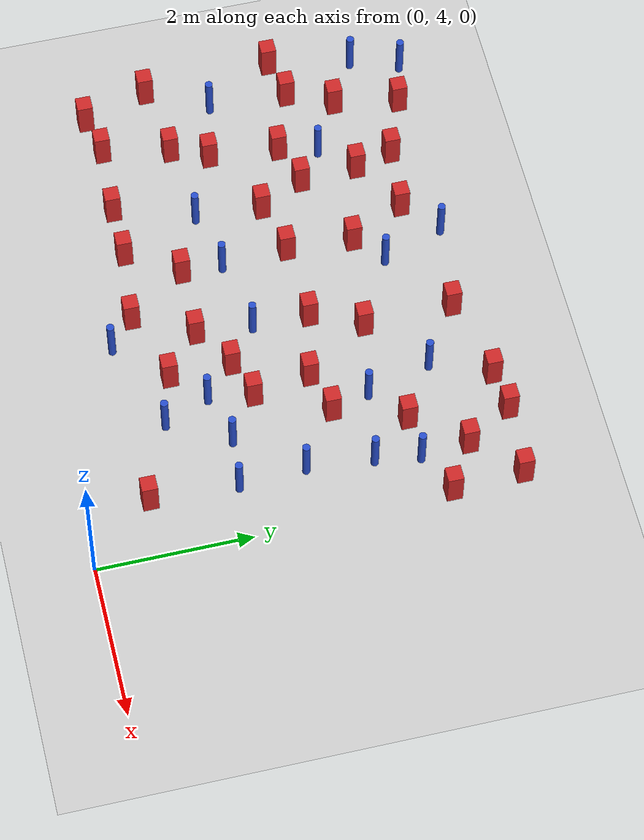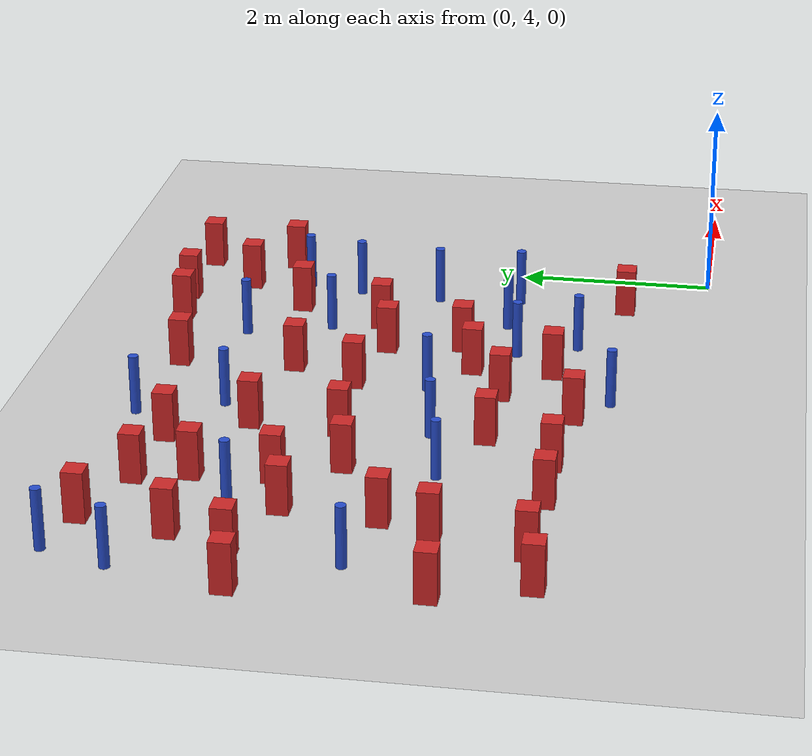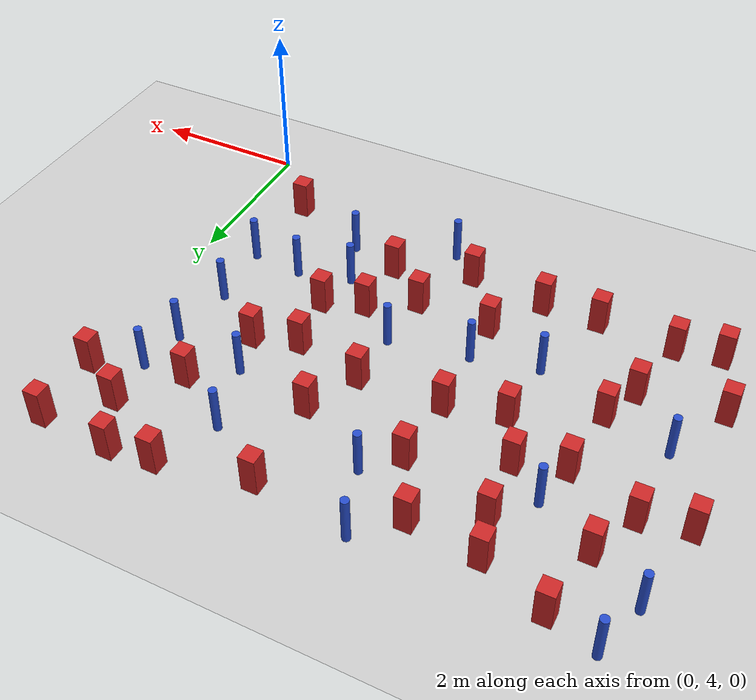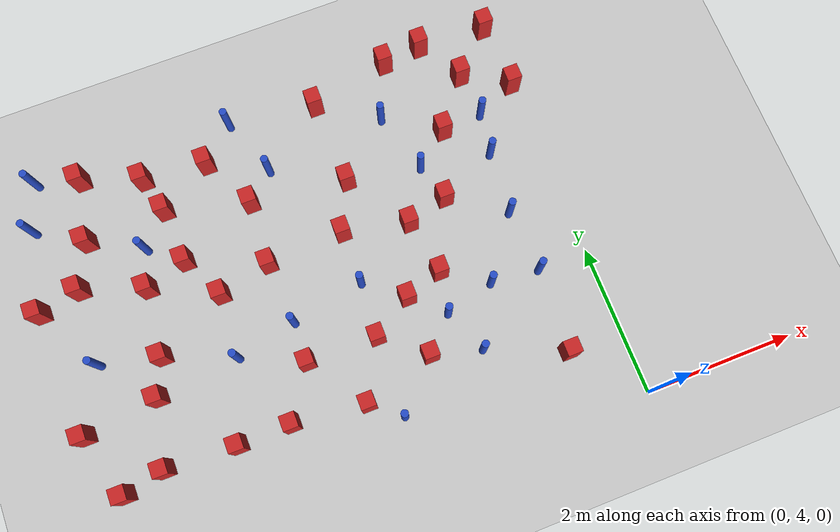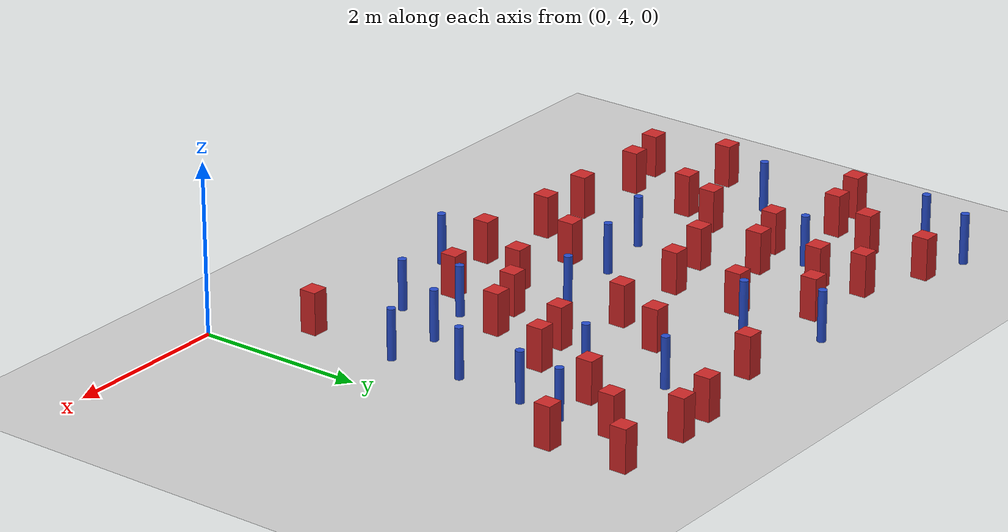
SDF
<sdf version="1.6">
 <world name="default">
  <model name="ground_plane">
   <static>1</static>
   <link name="link">
    <collision name="collision">
     <geometry><plane><normal>0 0 1</normal><size>100 100</size></plane></geometry>
     <surface><friction><ode><mu>100</mu><mu2>50</mu2></ode></friction></surface>
    </collision>
    <visual name="visual">
     <cast_shadows>0</cast_shadows>
     <geometry><plane><normal>0 0 1</normal><size>100 100</size></plane></geometry>
     <material>
      <ambient>1.0 1.0 1.0 1.0</ambient>
      <diffuse>0.8 0.8 0.8 1.0</diffuse>
      <specular>0.01 0.01 0.01 1.000000</specular>
     </material>
    </visual>
   </link>
  </model>
  <model name="square_post_obstacle3">
   <static>true</static>
   <pose>-2.6174061966 8.0196257443 8.22691968438e-08 7.22125133819e-06 -7.54495500217e-07 2.29674213826e-05</pose>
   <link name="link">
    <pose>0 0 0.25 0 -0 0</pose>
    <inertial>
     <mass>100</mass>
     <inertia>
      <ixx>0.166667</ixx>
      <ixy>0</ixy>
      <ixz>0</ixz>
      <iyy>0.166667</iyy>
      <iyz>0</iyz>
      <izz>0.166667</izz>
     </inertia>
    </inertial>
    <collision name="collision"><geometry><box><size>.2 .2 .5</size></box></geometry></collision>
    <visual name="visual">
     <geometry><box><size>.2 .2 .5</size></box></geometry>
     <material>
      <script><name>Gazebo/Red</name><uri>file://media/materials/scripts/gazebo.material</uri></script>
     </material>
    </visual>
   </link>
  </model>
  <model name="square_post_obstacle5">
   <static>true</static>
   <pose>-0.645134835433 8.885105888 8.22691968438e-08 7.22125133819e-06 -7.54495500217e-07 2.29674213826e-05</pose>
   <link name="link">
    <pose>0 0 0.25 0 -0 0</pose>
    <inertial>
     <mass>100</mass>
     <inertia>
      <ixx>0.166667</ixx>
      <ixy>0</ixy>
      <ixz>0</ixz>
      <iyy>0.166667</iyy>
      <iyz>0</iyz>
      <izz>0.166667</izz>
     </inertia>
    </inertial>
    <collision name="collision"><geometry><box><size>.2 .2 .5</size></box></geometry></collision>
    <visual name="visual">
     <geometry><box><size>.2 .2 .5</size></box></geometry>
     <material>
      <script><name>Gazebo/Red</name><uri>file://media/materials/scripts/gazebo.material</uri></script>
     </material>
    </visual>
   </link>
  </model>
  <model name="square_post_obstacle7">
   <static>true</static>
   <pose>-2.04888916923 7.17420283449 8.22691968438e-08 7.22125133819e-06 -7.54495500217e-07 2.29674213826e-05</pose>
   <link name="link">
    <pose>0 0 0.25 0 -0 0</pose>
    <inertial>
     <mass>100</mass>
     <inertia>
      <ixx>0.166667</ixx>
      <ixy>0</ixy>
      <ixz>0</ixz>
      <iyy>0.166667</iyy>
      <iyz>0</iyz>
      <izz>0.166667</izz>
     </inertia>
    </inertial>
    <collision name="collision"><geometry><box><size>.2 .2 .5</size></box></geometry></collision>
    <visual name="visual">
     <geometry><box><size>.2 .2 .5</size></box></geometry>
     <material>
      <script><name>Gazebo/Red</name><uri>file://media/materials/scripts/gazebo.material</uri></script>
     </material>
    </visual>
   </link>
  </model>
  <model name="pole_obstacle11">
   <static>true</static>
   <pose>-3.9105672306 6.45645708071 2.88873142074e-08 -9.90536692062e-09 4.60219948937e-07 -1.20965994985e-07</pose>
   <link name="link">
    <pose>0 0 0.3 0 -0 0</pose>
    <inertial>
     <mass>1</mass>
     <inertia><ixx>0.145833</ixx><ixy>0</ixy><ixz>0</ixz><iyy>0.145833</iyy><iyz>0</iyz><izz>0.125</izz></inertia>
    </inertial>
    <collision name="collision">
     <geometry><cylinder><radius>0.05</radius><length>.6</length></cylinder></geometry>
    </collision>
    <visual name="visual">
     <geometry><cylinder><radius>0.05</radius><length>.6</length></cylinder></geometry>
     <material>
      <script><name>Gazebo/Blue</name><uri>file://media/materials/scripts/gazebo.material</uri></script>
     </material>
    </visual>
   </link>
  </model>
  <model name="square_post_obstacle8">
   <static>true</static>
   <pose>-6.82306011882 6.04115686973 8.22691968438e-08 7.2212513382e-06 -7.54495500217e-07 2.29674213826e-05</pose>
   <link name="link">
    <pose>0 0 0.25 0 -0 0</pose>
    <inertial>
     <mass>100</mass>
     <inertia>
      <ixx>0.166667</ixx>
      <ixy>0</ixy>
      <ixz>0</ixz>
      <iyy>0.166667</iyy>
      <iyz>0</iyz>
      <izz>0.166667</izz>
     </inertia>
    </inertial>
    <collision name="collision"><geometry><box><size>.2 .2 .5</size></box></geometry></collision>
    <visual name="visual">
     <geometry><box><size>.2 .2 .5</size></box></geometry>
     <material>
      <script><name>Gazebo/Red</name><uri>file://media/materials/scripts/gazebo.material</uri></script>
     </material>
    </visual>
   </link>
  </model>
  <model name="square_post_obstacle9">
   <static>true</static>
   <pose>-3.92443147104 5.92480272412 8.22691968438e-08 7.22125133819e-06 -7.54495500217e-07 2.29674213826e-05</pose>
   <link name="link">
    <pose>0 0 0.25 0 -0 0</pose>
    <inertial>
     <mass>100</mass>
     <inertia>
      <ixx>0.166667</ixx>
      <ixy>0</ixy>
      <ixz>0</ixz>
      <iyy>0.166667</iyy>
      <iyz>0</iyz>
      <izz>0.166667</izz>
     </inertia>
    </inertial>
    <collision name="collision"><geometry><box><size>.2 .2 .5</size></box></geometry></collision>
    <visual name="visual">
     <geometry><box><size>.2 .2 .5</size></box></geometry>
     <material>
      <script><name>Gazebo/Red</name><uri>file://media/materials/scripts/gazebo.material</uri></script>
     </material>
    </visual>
   </link>
  </model>
  <model name="square_post_obstacle18">
   <static>true</static>
   <pose>-2.43390667206 6.24936321946 8.22691968438e-08 7.2212513382e-06 -7.54495500217e-07 2.29674213826e-05</pose>
   <link name="link">
    <pose>0 0 0.25 0 -0 0</pose>
    <inertial>
     <mass>100</mass>
     <inertia>
      <ixx>0.166667</ixx>
      <ixy>0</ixy>
      <ixz>0</ixz>
      <iyy>0.166667</iyy>
      <iyz>0</iyz>
      <izz>0.166667</izz>
     </inertia>
    </inertial>
    <collision name="collision"><geometry><box><size>.2 .2 .5</size></box></geometry></collision>
    <visual name="visual">
     <geometry><box><size>.2 .2 .5</size></box></geometry>
     <material>
      <script><name>Gazebo/Red</name><uri>file://media/materials/scripts/gazebo.material</uri></script>
     </material>
    </visual>
   </link>
  </model>
  <model name="square_post_obstacle25">
   <static>true</static>
   <pose>-3.96421467149 7.31643335258 8.22691968438e-08 7.22125133819e-06 -7.54495500217e-07 2.29674213826e-05</pose>
   <link name="link">
    <pose>0 0 0.25 0 -0 0</pose>
    <inertial>
     <mass>100</mass>
     <inertia>
      <ixx>0.166667</ixx>
      <ixy>0</ixy>
      <ixz>0</ixz>
      <iyy>0.166667</iyy>
      <iyz>0</iyz>
      <izz>0.166667</izz>
     </inertia>
    </inertial>
    <collision name="collision"><geometry><box><size>.2 .2 .5</size></box></geometry></collision>
    <visual name="visual">
     <geometry><box><size>.2 .2 .5</size></box></geometry>
     <material>
      <script><name>Gazebo/Red</name><uri>file://media/materials/scripts/gazebo.material</uri></script>
     </material>
    </visual>
   </link>
  </model>
  <model name="square_post_obstacle28">
   <static>true</static>
   <pose>-0.0864518264217 9.4384577424 8.22691968438e-08 7.22125133819e-06 -7.54495500217e-07 2.29674213826e-05</pose>
   <link name="link">
    <pose>0 0 0.25 0 -0 0</pose>
    <inertial>
     <mass>100</mass>
     <inertia>
      <ixx>0.166667</ixx>
      <ixy>0</ixy>
      <ixz>0</ixz>
      <iyy>0.166667</iyy>
      <iyz>0</iyz>
      <izz>0.166667</izz>
     </inertia>
    </inertial>
    <collision name="collision"><geometry><box><size>.2 .2 .5</size></box></geometry></collision>
    <visual name="visual">
     <geometry><box><size>.2 .2 .5</size></box></geometry>
     <material>
      <script><name>Gazebo/Red</name><uri>file://media/materials/scripts/gazebo.material</uri></script>
     </material>
    </visual>
   </link>
  </model>
  <model name="square_post_obstacle30">
   <static>true</static>
   <pose>-6.36442578415 7.86415820606 8.22691968438e-08 7.22125133819e-06 -7.54495500217e-07 2.29674213826e-05</pose>
   <link name="link">
    <pose>0 0 0.25 0 -0 0</pose>
    <inertial>
     <mass>100</mass>
     <inertia>
      <ixx>0.166667</ixx>
      <ixy>0</ixy>
      <ixz>0</ixz>
      <iyy>0.166667</iyy>
      <iyz>0</iyz>
      <izz>0.166667</izz>
     </inertia>
    </inertial>
    <collision name="collision"><geometry><box><size>.2 .2 .5</size></box></geometry></collision>
    <visual name="visual">
     <geometry><box><size>.2 .2 .5</size></box></geometry>
     <material>
      <script><name>Gazebo/Red</name><uri>file://media/materials/scripts/gazebo.material</uri></script>
     </material>
    </visual>
   </link>
  </model>
  <model name="square_post_obstacle31">
   <static>true</static>
   <pose>-4.2974575285 8.919167651 8.22691968438e-08 7.22125133819e-06 -7.54495500217e-07 2.29674213826e-05</pose>
   <link name="link">
    <pose>0 0 0.25 0 -0 0</pose>
    <inertial>
     <mass>100</mass>
     <inertia>
      <ixx>0.166667</ixx>
      <ixy>0</ixy>
      <ixz>0</ixz>
      <iyy>0.166667</iyy>
      <iyz>0</iyz>
      <izz>0.166667</izz>
     </inertia>
    </inertial>
    <collision name="collision"><geometry><box><size>.2 .2 .5</size></box></geometry></collision>
    <visual name="visual">
     <geometry><box><size>.2 .2 .5</size></box></geometry>
     <material>
      <script><name>Gazebo/Red</name><uri>file://media/materials/scripts/gazebo.material</uri></script>
     </material>
    </visual>
   </link>
  </model>
  <model name="square_post_obstacle32">
   <static>true</static>
   <pose>-2.98409769363 5.90545911593 8.22691968438e-08 7.2212513382e-06 -7.54495500217e-07 2.29674213826e-05</pose>
   <link name="link">
    <pose>0 0 0.25 0 -0 0</pose>
    <inertial>
     <mass>100</mass>
     <inertia>
      <ixx>0.166667</ixx>
      <ixy>0</ixy>
      <ixz>0</ixz>
      <iyy>0.166667</iyy>
      <iyz>0</iyz>
      <izz>0.166667</izz>
     </inertia>
    </inertial>
    <collision name="collision"><geometry><box><size>.2 .2 .5</size></box></geometry></collision>
    <visual name="visual">
     <geometry><box><size>.2 .2 .5</size></box></geometry>
     <material>
      <script><name>Gazebo/Red</name><uri>file://media/materials/scripts/gazebo.material</uri></script>
     </material>
    </visual>
   </link>
  </model>
  <model name="pole_obstacle47">
   <static>true</static>
   <pose>-4.72618957109 6.2810639374 2.88873142074e-08 -9.90536690842e-09 4.60219948965e-07 -1.20965994976e-07</pose>
   <link name="link">
    <pose>0 0 0.3 0 -0 0</pose>
    <inertial>
     <mass>1</mass>
     <inertia><ixx>0.145833</ixx><ixy>0</ixy><ixz>0</ixz><iyy>0.145833</iyy><iyz>0</iyz><izz>0.125</izz></inertia>
    </inertial>
    <collision name="collision">
     <geometry><cylinder><radius>0.05</radius><length>.6</length></cylinder></geometry>
    </collision>
    <visual name="visual">
     <geometry><cylinder><radius>0.05</radius><length>.6</length></cylinder></geometry>
     <material>
      <script><name>Gazebo/Blue</name><uri>file://media/materials/scripts/gazebo.material</uri></script>
     </material>
    </visual>
   </link>
  </model>
  <model name="pole_obstacle48">
   <static>true</static>
   <pose>-2.01597798541 5.85317914082 2.88873142074e-08 -9.90536689575e-09 4.60219948995e-07 -1.20965994956e-07</pose>
   <link name="link">
    <pose>0 0 0.3 0 -0 0</pose>
    <inertial>
     <mass>1</mass>
     <inertia><ixx>0.145833</ixx><ixy>0</ixy><ixz>0</ixz><iyy>0.145833</iyy><iyz>0</iyz><izz>0.125</izz></inertia>
    </inertial>
    <collision name="collision">
     <geometry><cylinder><radius>0.05</radius><length>.6</length></cylinder></geometry>
    </collision>
    <visual name="visual">
     <geometry><cylinder><radius>0.05</radius><length>.6</length></cylinder></geometry>
     <material>
      <script><name>Gazebo/Blue</name><uri>file://media/materials/scripts/gazebo.material</uri></script>
     </material>
    </visual>
   </link>
  </model>
  <model name="square_post_obstacle38">
   <static>true</static>
   <pose>-5.53027642553 7.56623998618 8.22691968438e-08 7.22125133819e-06 -7.54495500217e-07 2.29674213826e-05</pose>
   <link name="link">
    <pose>0 0 0.25 0 -0 0</pose>
    <inertial>
     <mass>100</mass>
     <inertia>
      <ixx>0.166667</ixx>
      <ixy>0</ixy>
      <ixz>0</ixz>
      <iyy>0.166667</iyy>
      <iyz>0</iyz>
      <izz>0.166667</izz>
     </inertia>
    </inertial>
    <collision name="collision"><geometry><box><size>.2 .2 .5</size></box></geometry></collision>
    <visual name="visual">
     <geometry><box><size>.2 .2 .5</size></box></geometry>
     <material>
      <script><name>Gazebo/Red</name><uri>file://media/materials/scripts/gazebo.material</uri></script>
     </material>
    </visual>
   </link>
  </model>
  <model name="pole_obstacle56">
   <static>true</static>
   <pose>-0.696608456123 5.96498830313 2.88873142074e-08 -9.90536689661e-09 4.60219948993e-07 -1.20965994957e-07</pose>
   <link name="link">
    <pose>0 0 0.3 0 -0 0</pose>
    <inertial>
     <mass>1</mass>
     <inertia><ixx>0.145833</ixx><ixy>0</ixy><ixz>0</ixz><iyy>0.145833</iyy><iyz>0</iyz><izz>0.125</izz></inertia>
    </inertial>
    <collision name="collision">
     <geometry><cylinder><radius>0.05</radius><length>.6</length></cylinder></geometry>
    </collision>
    <visual name="visual">
     <geometry><cylinder><radius>0.05</radius><length>.6</length></cylinder></geometry>
     <material>
      <script><name>Gazebo/Blue</name><uri>file://media/materials/scripts/gazebo.material</uri></script>
     </material>
    </visual>
   </link>
  </model>
  <model name="pole_obstacle62">
   <static>true</static>
   <pose>-6.71667173271 8.83061359466 2.88873142074e-08 -9.9053668967e-09 4.60219948993e-07 -1.20965994957e-07</pose>
   <link name="link">
    <pose>0 0 0.3 0 -0 0</pose>
    <inertial>
     <mass>1</mass>
     <inertia><ixx>0.145833</ixx><ixy>0</ixy><ixz>0</ixz><iyy>0.145833</iyy><iyz>0</iyz><izz>0.125</izz></inertia>
    </inertial>
    <collision name="collision">
     <geometry><cylinder><radius>0.05</radius><length>.6</length></cylinder></geometry>
    </collision>
    <visual name="visual">
     <geometry><cylinder><radius>0.05</radius><length>.6</length></cylinder></geometry>
     <material>
      <script><name>Gazebo/Blue</name><uri>file://media/materials/scripts/gazebo.material</uri></script>
     </material>
    </visual>
   </link>
  </model>
  <model name="square_post_obstacle60">
   <static>true</static>
   <pose>-5.621400066 6.65565342604 8.22691968438e-08 7.2212513382e-06 -7.54495500217e-07 2.29674213826e-05</pose>
   <link name="link">
    <pose>0 0 0.25 0 -0 0</pose>
    <inertial>
     <mass>100</mass>
     <inertia>
      <ixx>0.166667</ixx>
      <ixy>0</ixy>
      <ixz>0</ixz>
      <iyy>0.166667</iyy>
      <iyz>0</iyz>
      <izz>0.166667</izz>
     </inertia>
    </inertial>
    <collision name="collision"><geometry><box><size>.2 .2 .5</size></box></geometry></collision>
    <visual name="visual">
     <geometry><box><size>.2 .2 .5</size></box></geometry>
     <material>
      <script><name>Gazebo/Red</name><uri>file://media/materials/scripts/gazebo.material</uri></script>
     </material>
    </visual>
   </link>
  </model>
  <model name="square_post_obstacle64">
   <static>true</static>
   <pose>-5.15093123879 9.00493640276 8.22691968438e-08 7.22125133819e-06 -7.54495500217e-07 2.29674213826e-05</pose>
   <link name="link">
    <pose>0 0 0.25 0 -0 0</pose>
    <inertial>
     <mass>100</mass>
     <inertia>
      <ixx>0.166667</ixx>
      <ixy>0</ixy>
      <ixz>0</ixz>
      <iyy>0.166667</iyy>
      <iyz>0</iyz>
      <izz>0.166667</izz>
     </inertia>
    </inertial>
    <collision name="collision"><geometry><box><size>.2 .2 .5</size></box></geometry></collision>
    <visual name="visual">
     <geometry><box><size>.2 .2 .5</size></box></geometry>
     <material>
      <script><name>Gazebo/Red</name><uri>file://media/materials/scripts/gazebo.material</uri></script>
     </material>
    </visual>
   </link>
  </model>
  <model name="pole_obstacle75">
   <static>true</static>
   <pose>-3.00789084993 4.82495907167 2.88873142074e-08 -9.90536692062e-09 4.60219948937e-07 -1.20965994985e-07</pose>
   <link name="link">
    <pose>0 0 0.3 0 -0 0</pose>
    <inertial>
     <mass>1</mass>
     <inertia><ixx>0.145833</ixx><ixy>0</ixy><ixz>0</ixz><iyy>0.145833</iyy><iyz>0</iyz><izz>0.125</izz></inertia>
    </inertial>
    <collision name="collision">
     <geometry><cylinder><radius>0.05</radius><length>.6</length></cylinder></geometry>
    </collision>
    <visual name="visual">
     <geometry><cylinder><radius>0.05</radius><length>.6</length></cylinder></geometry>
     <material>
      <script><name>Gazebo/Blue</name><uri>file://media/materials/scripts/gazebo.material</uri></script>
     </material>
    </visual>
   </link>
  </model>
  <model name="pole_obstacle82">
   <static>true</static>
   <pose>-1.77037196241 5.25587868518 2.88873142074e-08 -9.90536689852e-09 4.60219948989e-07 -1.2096599496e-07</pose>
   <link name="link">
    <pose>0 0 0.3 0 -0 0</pose>
    <inertial>
     <mass>1</mass>
     <inertia><ixx>0.145833</ixx><ixy>0</ixy><ixz>0</ixz><iyy>0.145833</iyy><iyz>0</iyz><izz>0.125</izz></inertia>
    </inertial>
    <collision name="collision">
     <geometry><cylinder><radius>0.05</radius><length>.6</length></cylinder></geometry>
    </collision>
    <visual name="visual">
     <geometry><cylinder><radius>0.05</radius><length>.6</length></cylinder></geometry>
     <material>
      <script><name>Gazebo/Blue</name><uri>file://media/materials/scripts/gazebo.material</uri></script>
     </material>
    </visual>
   </link>
  </model>
  <model name="pole_obstacle83">
   <static>true</static>
   <pose>-5.40125924761 8.07742929753 2.88873142074e-08 -9.9053668967e-09 4.60219948993e-07 -1.20965994957e-07</pose>
   <link name="link">
    <pose>0 0 0.3 0 -0 0</pose>
    <inertial>
     <mass>1</mass>
     <inertia><ixx>0.145833</ixx><ixy>0</ixy><ixz>0</ixz><iyy>0.145833</iyy><iyz>0</iyz><izz>0.125</izz></inertia>
    </inertial>
    <collision name="collision">
     <geometry><cylinder><radius>0.05</radius><length>.6</length></cylinder></geometry>
    </collision>
    <visual name="visual">
     <geometry><cylinder><radius>0.05</radius><length>.6</length></cylinder></geometry>
     <material>
      <script><name>Gazebo/Blue</name><uri>file://media/materials/scripts/gazebo.material</uri></script>
     </material>
    </visual>
   </link>
  </model>
  <model name="square_post_obstacle76">
   <static>true</static>
   <pose>-5.01425617465 8.50079144619 8.22691968438e-08 7.22125133819e-06 -7.54495500217e-07 2.29674213826e-05</pose>
   <link name="link">
    <pose>0 0 0.25 0 -0 0</pose>
    <inertial>
     <mass>100</mass>
     <inertia>
      <ixx>0.166667</ixx>
      <ixy>0</ixy>
      <ixz>0</ixz>
      <iyy>0.166667</iyy>
      <iyz>0</iyz>
      <izz>0.166667</izz>
     </inertia>
    </inertial>
    <collision name="collision"><geometry><box><size>.2 .2 .5</size></box></geometry></collision>
    <visual name="visual">
     <geometry><box><size>.2 .2 .5</size></box></geometry>
     <material>
      <script><name>Gazebo/Red</name><uri>file://media/materials/scripts/gazebo.material</uri></script>
     </material>
    </visual>
   </link>
  </model>
  <model name="pole_obstacle89">
   <static>true</static>
   <pose>-0.68033946062 7.68483507442 2.88873142074e-08 -9.90536689661e-09 4.60219948993e-07 -1.20965994957e-07</pose>
   <link name="link">
    <pose>0 0 0.3 0 -0 0</pose>
    <inertial>
     <mass>1</mass>
     <inertia><ixx>0.145833</ixx><ixy>0</ixy><ixz>0</ixz><iyy>0.145833</iyy><iyz>0</iyz><izz>0.125</izz></inertia>
    </inertial>
    <collision name="collision">
     <geometry><cylinder><radius>0.05</radius><length>.6</length></cylinder></geometry>
    </collision>
    <visual name="visual">
     <geometry><cylinder><radius>0.05</radius><length>.6</length></cylinder></geometry>
     <material>
      <script><name>Gazebo/Blue</name><uri>file://media/materials/scripts/gazebo.material</uri></script>
     </material>
    </visual>
   </link>
  </model>
  <model name="square_post_obstacle82">
   <static>true</static>
   <pose>-4.36212795225 5.25739036829 8.22691968438e-08 7.2212513382e-06 -7.54495500217e-07 2.29674213826e-05</pose>
   <link name="link">
    <pose>0 0 0.25 0 -0 0</pose>
    <inertial>
     <mass>100</mass>
     <inertia>
      <ixx>0.166667</ixx>
      <ixy>0</ixy>
      <ixz>0</ixz>
      <iyy>0.166667</iyy>
      <iyz>0</iyz>
      <izz>0.166667</izz>
     </inertia>
    </inertial>
    <collision name="collision"><geometry><box><size>.2 .2 .5</size></box></geometry></collision>
    <visual name="visual">
     <geometry><box><size>.2 .2 .5</size></box></geometry>
     <material>
      <script><name>Gazebo/Red</name><uri>file://media/materials/scripts/gazebo.material</uri></script>
     </material>
    </visual>
   </link>
  </model>
  <model name="pole_obstacle98">
   <static>true</static>
   <pose>-3.53865539487 8.52902612128 2.88873142074e-08 -9.9053668994e-09 4.60219948987e-07 -1.20965994963e-07</pose>
   <link name="link">
    <pose>0 0 0.3 0 -0 0</pose>
    <inertial>
     <mass>1</mass>
     <inertia><ixx>0.145833</ixx><ixy>0</ixy><ixz>0</ixz><iyy>0.145833</iyy><iyz>0</iyz><izz>0.125</izz></inertia>
    </inertial>
    <collision name="collision">
     <geometry><cylinder><radius>0.05</radius><length>.6</length></cylinder></geometry>
    </collision>
    <visual name="visual">
     <geometry><cylinder><radius>0.05</radius><length>.6</length></cylinder></geometry>
     <material>
      <script><name>Gazebo/Blue</name><uri>file://media/materials/scripts/gazebo.material</uri></script>
     </material>
    </visual>
   </link>
  </model>
  <model name="pole_obstacle108">
   <static>true</static>
   <pose>-2.92514979462 6.63573691955 2.88873142074e-08 -9.90536689859e-09 4.60219948989e-07 -1.20965994961e-07</pose>
   <link name="link">
    <pose>0 0 0.3 0 -0 0</pose>
    <inertial>
     <mass>1</mass>
     <inertia><ixx>0.145833</ixx><ixy>0</ixy><ixz>0</ixz><iyy>0.145833</iyy><iyz>0</iyz><izz>0.125</izz></inertia>
    </inertial>
    <collision name="collision">
     <geometry><cylinder><radius>0.05</radius><length>.6</length></cylinder></geometry>
    </collision>
    <visual name="visual">
     <geometry><cylinder><radius>0.05</radius><length>.6</length></cylinder></geometry>
     <material>
      <script><name>Gazebo/Blue</name><uri>file://media/materials/scripts/gazebo.material</uri></script>
     </material>
    </visual>
   </link>
  </model>
  <model name="pole_obstacle110">
   <static>true</static>
   <pose>-1.62707193069 7.83590830338 2.88873142074e-08 -9.90536689852e-09 4.60219948989e-07 -1.2096599496e-07</pose>
   <link name="link">
    <pose>0 0 0.3 0 -0 0</pose>
    <inertial>
     <mass>1</mass>
     <inertia><ixx>0.145833</ixx><ixy>0</ixy><ixz>0</ixz><iyy>0.145833</iyy><iyz>0</iyz><izz>0.125</izz></inertia>
    </inertial>
    <collision name="collision">
     <geometry><cylinder><radius>0.05</radius><length>.6</length></cylinder></geometry>
    </collision>
    <visual name="visual">
     <geometry><cylinder><radius>0.05</radius><length>.6</length></cylinder></geometry>
     <material>
      <script><name>Gazebo/Blue</name><uri>file://media/materials/scripts/gazebo.material</uri></script>
     </material>
    </visual>
   </link>
  </model>
  <model name="square_post_obstacle121">
   <static>true</static>
   <pose>-5.8254573433 6.17375206314 8.22691968438e-08 7.2212513382e-06 -7.54495500217e-07 2.29674213826e-05</pose>
   <link name="link">
    <pose>0 0 0.25 0 -0 0</pose>
    <inertial>
     <mass>100</mass>
     <inertia>
      <ixx>0.166667</ixx>
      <ixy>0</ixy>
      <ixz>0</ixz>
      <iyy>0.166667</iyy>
      <iyz>0</iyz>
      <izz>0.166667</izz>
     </inertia>
    </inertial>
    <collision name="collision"><geometry><box><size>.2 .2 .5</size></box></geometry></collision>
    <visual name="visual">
     <geometry><box><size>.2 .2 .5</size></box></geometry>
     <material>
      <script><name>Gazebo/Red</name><uri>file://media/materials/scripts/gazebo.material</uri></script>
     </material>
    </visual>
   </link>
  </model>
  <model name="pole_obstacle127">
   <static>true</static>
   <pose>-1.34891424311 6.02551207283 2.88873142074e-08 -9.90536689852e-09 4.60219948989e-07 -1.2096599496e-07</pose>
   <link name="link">
    <pose>0 0 0.3 0 -0 0</pose>
    <inertial>
     <mass>1</mass>
     <inertia><ixx>0.145833</ixx><ixy>0</ixy><ixz>0</ixz><iyy>0.145833</iyy><iyz>0</iyz><izz>0.125</izz></inertia>
    </inertial>
    <collision name="collision">
     <geometry><cylinder><radius>0.05</radius><length>.6</length></cylinder></geometry>
    </collision>
    <visual name="visual">
     <geometry><cylinder><radius>0.05</radius><length>.6</length></cylinder></geometry>
     <material>
      <script><name>Gazebo/Blue</name><uri>file://media/materials/scripts/gazebo.material</uri></script>
     </material>
    </visual>
   </link>
  </model>
  <model name="square_post_obstacle123">
   <static>true</static>
   <pose>-3.91560765916 8.18813620422 8.22691968438e-08 7.22125133819e-06 -7.54495500217e-07 2.29674213826e-05</pose>
   <link name="link">
    <pose>0 0 0.25 0 -0 0</pose>
    <inertial>
     <mass>100</mass>
     <inertia>
      <ixx>0.166667</ixx>
      <ixy>0</ixy>
      <ixz>0</ixz>
      <iyy>0.166667</iyy>
      <iyz>0</iyz>
      <izz>0.166667</izz>
     </inertia>
    </inertial>
    <collision name="collision"><geometry><box><size>.2 .2 .5</size></box></geometry></collision>
    <visual name="visual">
     <geometry><box><size>.2 .2 .5</size></box></geometry>
     <material>
      <script><name>Gazebo/Red</name><uri>file://media/materials/scripts/gazebo.material</uri></script>
     </material>
    </visual>
   </link>
  </model>
  <model name="pole_obstacle133">
   <static>true</static>
   <pose>-1.87424847545 8.68319025933 2.88873142074e-08 -9.90536690474e-09 4.60219948974e-07 -1.2096599497e-07</pose>
   <link name="link">
    <pose>0 0 0.3 0 -0 0</pose>
    <inertial>
     <mass>1</mass>
     <inertia><ixx>0.145833</ixx><ixy>0</ixy><ixz>0</ixz><iyy>0.145833</iyy><iyz>0</iyz><izz>0.125</izz></inertia>
    </inertial>
    <collision name="collision">
     <geometry><cylinder><radius>0.05</radius><length>.6</length></cylinder></geometry>
    </collision>
    <visual name="visual">
     <geometry><cylinder><radius>0.05</radius><length>.6</length></cylinder></geometry>
     <material>
      <script><name>Gazebo/Blue</name><uri>file://media/materials/scripts/gazebo.material</uri></script>
     </material>
    </visual>
   </link>
  </model>
  <model name="pole_obstacle135">
   <static>true</static>
   <pose>-6.41570696665 6.83806469962 2.88873142074e-08 -9.90536690842e-09 4.60219948965e-07 -1.20965994976e-07</pose>
   <link name="link">
    <pose>0 0 0.3 0 -0 0</pose>
    <inertial>
     <mass>1</mass>
     <inertia><ixx>0.145833</ixx><ixy>0</ixy><ixz>0</ixz><iyy>0.145833</iyy><iyz>0</iyz><izz>0.125</izz></inertia>
    </inertial>
    <collision name="collision">
     <geometry><cylinder><radius>0.05</radius><length>.6</length></cylinder></geometry>
    </collision>
    <visual name="visual">
     <geometry><cylinder><radius>0.05</radius><length>.6</length></cylinder></geometry>
     <material>
      <script><name>Gazebo/Blue</name><uri>file://media/materials/scripts/gazebo.material</uri></script>
     </material>
    </visual>
   </link>
  </model>
  <model name="square_post_obstacle135">
   <static>true</static>
   <pose>-2.91844622405 7.36921831655 8.22691968438e-08 7.2212513382e-06 -7.54495500217e-07 2.29674213826e-05</pose>
   <link name="link">
    <pose>0 0 0.25 0 -0 0</pose>
    <inertial>
     <mass>100</mass>
     <inertia>
      <ixx>0.166667</ixx>
      <ixy>0</ixy>
      <ixz>0</ixz>
      <iyy>0.166667</iyy>
      <iyz>0</iyz>
      <izz>0.166667</izz>
     </inertia>
    </inertial>
    <collision name="collision"><geometry><box><size>.2 .2 .5</size></box></geometry></collision>
    <visual name="visual">
     <geometry><box><size>.2 .2 .5</size></box></geometry>
     <material>
      <script><name>Gazebo/Red</name><uri>file://media/materials/scripts/gazebo.material</uri></script>
     </material>
    </visual>
   </link>
  </model>
  <model name="pole_obstacle146">
   <static>true</static>
   <pose>-0.589304039459 8.26009525998 2.88873142074e-08 -9.90536690779e-09 4.60219948967e-07 -1.20965994975e-07</pose>
   <link name="link">
    <pose>0 0 0.3 0 -0 0</pose>
    <inertial>
     <mass>1</mass>
     <inertia><ixx>0.145833</ixx><ixy>0</ixy><ixz>0</ixz><iyy>0.145833</iyy><iyz>0</iyz><izz>0.125</izz></inertia>
    </inertial>
    <collision name="collision">
     <geometry><cylinder><radius>0.05</radius><length>.6</length></cylinder></geometry>
    </collision>
    <visual name="visual">
     <geometry><cylinder><radius>0.05</radius><length>.6</length></cylinder></geometry>
     <material>
      <script><name>Gazebo/Blue</name><uri>file://media/materials/scripts/gazebo.material</uri></script>
     </material>
    </visual>
   </link>
  </model>
  <model name="pole_obstacle149">
   <static>true</static>
   <pose>-3.83409098604 9.34252193959 2.88873142074e-08 -9.9053668994e-09 4.60219948987e-07 -1.20965994963e-07</pose>
   <link name="link">
    <pose>0 0 0.3 0 -0 0</pose>
    <inertial>
     <mass>1</mass>
     <inertia><ixx>0.145833</ixx><ixy>0</ixy><ixz>0</ixz><iyy>0.145833</iyy><iyz>0</iyz><izz>0.125</izz></inertia>
    </inertial>
    <collision name="collision">
     <geometry><cylinder><radius>0.05</radius><length>.6</length></cylinder></geometry>
    </collision>
    <visual name="visual">
     <geometry><cylinder><radius>0.05</radius><length>.6</length></cylinder></geometry>
     <material>
      <script><name>Gazebo/Blue</name><uri>file://media/materials/scripts/gazebo.material</uri></script>
     </material>
    </visual>
   </link>
  </model>
  <model name="square_post_obstacle144">
   <static>true</static>
   <pose>-3.38676769844 5.15234730655 8.22691968438e-08 7.2212513382e-06 -7.54495500217e-07 2.29674213826e-05</pose>
   <link name="link">
    <pose>0 0 0.25 0 -0 0</pose>
    <inertial>
     <mass>100</mass>
     <inertia>
      <ixx>0.166667</ixx>
      <ixy>0</ixy>
      <ixz>0</ixz>
      <iyy>0.166667</iyy>
      <iyz>0</iyz>
      <izz>0.166667</izz>
     </inertia>
    </inertial>
    <collision name="collision"><geometry><box><size>.2 .2 .5</size></box></geometry></collision>
    <visual name="visual">
     <geometry><box><size>.2 .2 .5</size></box></geometry>
     <material>
      <script><name>Gazebo/Red</name><uri>file://media/materials/scripts/gazebo.material</uri></script>
     </material>
    </visual>
   </link>
  </model>
  <model name="square_post_obstacle147">
   <static>true</static>
   <pose>-5.06688837298 5.25031914023 8.22691968438e-08 7.2212513382e-06 -7.54495500217e-07 2.29674213826e-05</pose>
   <link name="link">
    <pose>0 0 0.25 0 -0 0</pose>
    <inertial>
     <mass>100</mass>
     <inertia>
      <ixx>0.166667</ixx>
      <ixy>0</ixy>
      <ixz>0</ixz>
      <iyy>0.166667</iyy>
      <iyz>0</iyz>
      <izz>0.166667</izz>
     </inertia>
    </inertial>
    <collision name="collision"><geometry><box><size>.2 .2 .5</size></box></geometry></collision>
    <visual name="visual">
     <geometry><box><size>.2 .2 .5</size></box></geometry>
     <material>
      <script><name>Gazebo/Red</name><uri>file://media/materials/scripts/gazebo.material</uri></script>
     </material>
    </visual>
   </link>
  </model>
  <model name="square_post_obstacle159">
   <static>true</static>
   <pose>-5.93716478626 9.29992312881 8.22691968438e-08 7.22125133819e-06 -7.54495500217e-07 2.29674213826e-05</pose>
   <link name="link">
    <pose>0 0 0.25 0 -0 0</pose>
    <inertial>
     <mass>100</mass>
     <inertia>
      <ixx>0.166667</ixx>
      <ixy>0</ixy>
      <ixz>0</ixz>
      <iyy>0.166667</iyy>
      <iyz>0</iyz>
      <izz>0.166667</izz>
     </inertia>
    </inertial>
    <collision name="collision"><geometry><box><size>.2 .2 .5</size></box></geometry></collision>
    <visual name="visual">
     <geometry><box><size>.2 .2 .5</size></box></geometry>
     <material>
      <script><name>Gazebo/Red</name><uri>file://media/materials/scripts/gazebo.material</uri></script>
     </material>
    </visual>
   </link>
  </model>
  <model name="square_post_obstacle164">
   <static>true</static>
   <pose>-0.0405945120151 8.52331324376 8.22691968438e-08 7.22125133819e-06 -7.54495500217e-07 2.29674213826e-05</pose>
   <link name="link">
    <pose>0 0 0.25 0 -0 0</pose>
    <inertial>
     <mass>100</mass>
     <inertia>
      <ixx>0.166667</ixx>
      <ixy>0</ixy>
      <ixz>0</ixz>
      <iyy>0.166667</iyy>
      <iyz>0</iyz>
      <izz>0.166667</izz>
     </inertia>
    </inertial>
    <collision name="collision"><geometry><box><size>.2 .2 .5</size></box></geometry></collision>
    <visual name="visual">
     <geometry><box><size>.2 .2 .5</size></box></geometry>
     <material>
      <script><name>Gazebo/Red</name><uri>file://media/materials/scripts/gazebo.material</uri></script>
     </material>
    </visual>
   </link>
  </model>
  <model name="square_post_obstacle167">
   <static>true</static>
   <pose>-1.56014566735 9.43030144342 8.22691968438e-08 7.22125133819e-06 -7.54495500217e-07 2.29674213826e-05</pose>
   <link name="link">
    <pose>0 0 0.25 0 -0 0</pose>
    <inertial>
     <mass>100</mass>
     <inertia>
      <ixx>0.166667</ixx>
      <ixy>0</ixy>
      <ixz>0</ixz>
      <iyy>0.166667</iyy>
      <iyz>0</iyz>
      <izz>0.166667</izz>
     </inertia>
    </inertial>
    <collision name="collision"><geometry><box><size>.2 .2 .5</size></box></geometry></collision>
    <visual name="visual">
     <geometry><box><size>.2 .2 .5</size></box></geometry>
     <material>
      <script><name>Gazebo/Red</name><uri>file://media/materials/scripts/gazebo.material</uri></script>
     </material>
    </visual>
   </link>
  </model>
  <model name="square_post_obstacle175">
   <static>true</static>
   <pose>-4.96824122334 7.7432622966 8.22691968438e-08 7.2212513382e-06 -7.54495500217e-07 2.29674213826e-05</pose>
   <link name="link">
    <pose>0 0 0.25 0 -0 0</pose>
    <inertial>
     <mass>100</mass>
     <inertia>
      <ixx>0.166667</ixx>
      <ixy>0</ixy>
      <ixz>0</ixz>
      <iyy>0.166667</iyy>
      <iyz>0</iyz>
      <izz>0.166667</izz>
     </inertia>
    </inertial>
    <collision name="collision"><geometry><box><size>.2 .2 .5</size></box></geometry></collision>
    <visual name="visual">
     <geometry><box><size>.2 .2 .5</size></box></geometry>
     <material>
      <script><name>Gazebo/Red</name><uri>file://media/materials/scripts/gazebo.material</uri></script>
     </material>
    </visual>
   </link>
  </model>
  <model name="square_post_obstacle179">
   <static>true</static>
   <pose>-2.65569901186 9.18619225382 8.22691968438e-08 7.22125133819e-06 -7.54495500217e-07 2.29674213826e-05</pose>
   <link name="link">
    <pose>0 0 0.25 0 -0 0</pose>
    <inertial>
     <mass>100</mass>
     <inertia>
      <ixx>0.166667</ixx>
      <ixy>0</ixy>
      <ixz>0</ixz>
      <iyy>0.166667</iyy>
      <iyz>0</iyz>
      <izz>0.166667</izz>
     </inertia>
    </inertial>
    <collision name="collision"><geometry><box><size>.2 .2 .5</size></box></geometry></collision>
    <visual name="visual">
     <geometry><box><size>.2 .2 .5</size></box></geometry>
     <material>
      <script><name>Gazebo/Red</name><uri>file://media/materials/scripts/gazebo.material</uri></script>
     </material>
    </visual>
   </link>
  </model>
  <model name="pole_obstacle182">
   <static>true</static>
   <pose>-0.756427370194 6.82609957988 2.88873142074e-08 -9.90536689661e-09 4.60219948993e-07 -1.20965994957e-07</pose>
   <link name="link">
    <pose>0 0 0.3 0 -0 0</pose>
    <inertial>
     <mass>1</mass>
     <inertia><ixx>0.145833</ixx><ixy>0</ixy><ixz>0</ixz><iyy>0.145833</iyy><iyz>0</iyz><izz>0.125</izz></inertia>
    </inertial>
    <collision name="collision">
     <geometry><cylinder><radius>0.05</radius><length>.6</length></cylinder></geometry>
    </collision>
    <visual name="visual">
     <geometry><cylinder><radius>0.05</radius><length>.6</length></cylinder></geometry>
     <material>
      <script><name>Gazebo/Blue</name><uri>file://media/materials/scripts/gazebo.material</uri></script>
     </material>
    </visual>
   </link>
  </model>
  <model name="square_post_obstacle188">
   <static>true</static>
   <pose>-6.92606326847 7.74355422413 8.22691968438e-08 7.22125133819e-06 -7.54495500217e-07 2.29674213826e-05</pose>
   <link name="link">
    <pose>0 0 0.25 0 -0 0</pose>
    <inertial>
     <mass>100</mass>
     <inertia>
      <ixx>0.166667</ixx>
      <ixy>0</ixy>
      <ixz>0</ixz>
      <iyy>0.166667</iyy>
      <iyz>0</iyz>
      <izz>0.166667</izz>
     </inertia>
    </inertial>
    <collision name="collision"><geometry><box><size>.2 .2 .5</size></box></geometry></collision>
    <visual name="visual">
     <geometry><box><size>.2 .2 .5</size></box></geometry>
     <material>
      <script><name>Gazebo/Red</name><uri>file://media/materials/scripts/gazebo.material</uri></script>
     </material>
    </visual>
   </link>
  </model>
  <model name="square_post_obstacle191">
   <static>true</static>
   <pose>-1.0173851989 9.49373743621 8.22691968438e-08 7.22125133819e-06 -7.54495500217e-07 2.29674213826e-05</pose>
   <link name="link">
    <pose>0 0 0.25 0 -0 0</pose>
    <inertial>
     <mass>100</mass>
     <inertia>
      <ixx>0.166667</ixx>
      <ixy>0</ixy>
      <ixz>0</ixz>
      <iyy>0.166667</iyy>
      <iyz>0</iyz>
      <izz>0.166667</izz>
     </inertia>
    </inertial>
    <collision name="collision"><geometry><box><size>.2 .2 .5</size></box></geometry></collision>
    <visual name="visual">
     <geometry><box><size>.2 .2 .5</size></box></geometry>
     <material>
      <script><name>Gazebo/Red</name><uri>file://media/materials/scripts/gazebo.material</uri></script>
     </material>
    </visual>
   </link>
  </model>
  <model name="square_post_obstacle199">
   <static>true</static>
   <pose>-6.56126020099 5.1821482367 8.22691968438e-08 7.2212513382e-06 -7.54495500217e-07 2.29674213826e-05</pose>
   <link name="link">
    <pose>0 0 0.25 0 -0 0</pose>
    <inertial>
     <mass>100</mass>
     <inertia>
      <ixx>0.166667</ixx>
      <ixy>0</ixy>
      <ixz>0</ixz>
      <iyy>0.166667</iyy>
      <iyz>0</iyz>
      <izz>0.166667</izz>
     </inertia>
    </inertial>
    <collision name="collision"><geometry><box><size>.2 .2 .5</size></box></geometry></collision>
    <visual name="visual">
     <geometry><box><size>.2 .2 .5</size></box></geometry>
     <material>
      <script><name>Gazebo/Red</name><uri>file://media/materials/scripts/gazebo.material</uri></script>
     </material>
    </visual>
   </link>
  </model>
  <model name="square_post_obstacle210">
   <static>true</static>
   <pose>-6.09283037475 8.45290056251 8.22691968438e-08 7.22125133819e-06 -7.54495500217e-07 2.29674213826e-05</pose>
   <link name="link">
    <pose>0 0 0.25 0 -0 0</pose>
    <inertial>
     <mass>100</mass>
     <inertia>
      <ixx>0.166667</ixx>
      <ixy>0</ixy>
      <ixz>0</ixz>
      <iyy>0.166667</iyy>
      <iyz>0</iyz>
      <izz>0.166667</izz>
     </inertia>
    </inertial>
    <collision name="collision"><geometry><box><size>.2 .2 .5</size></box></geometry></collision>
    <visual name="visual">
     <geometry><box><size>.2 .2 .5</size></box></geometry>
     <material>
      <script><name>Gazebo/Red</name><uri>file://media/materials/scripts/gazebo.material</uri></script>
     </material>
    </visual>
   </link>
  </model>
  <model name="square_post_obstacle212">
   <static>true</static>
   <pose>-2.42880151791 5.44592521354 8.22691968438e-08 7.2212513382e-06 -7.54495500217e-07 2.29674213826e-05</pose>
   <link name="link">
    <pose>0 0 0.25 0 -0 0</pose>
    <inertial>
     <mass>100</mass>
     <inertia>
      <ixx>0.166667</ixx>
      <ixy>0</ixy>
      <ixz>0</ixz>
      <iyy>0.166667</iyy>
      <iyz>0</iyz>
      <izz>0.166667</izz>
     </inertia>
    </inertial>
    <collision name="collision"><geometry><box><size>.2 .2 .5</size></box></geometry></collision>
    <visual name="visual">
     <geometry><box><size>.2 .2 .5</size></box></geometry>
     <material>
      <script><name>Gazebo/Red</name><uri>file://media/materials/scripts/gazebo.material</uri></script>
     </material>
    </visual>
   </link>
  </model>
  <model name="square_post_obstacle213">
   <static>true</static>
   <pose>-0.75814863313 4.84355219533 8.22691968438e-08 7.2212513382e-06 -7.54495500217e-07 2.29674213826e-05</pose>
   <link name="link">
    <pose>0 0 0.25 0 -0 0</pose>
    <inertial>
     <mass>100</mass>
     <inertia>
      <ixx>0.166667</ixx>
      <ixy>0</ixy>
      <ixz>0</ixz>
      <iyy>0.166667</iyy>
      <iyz>0</iyz>
      <izz>0.166667</izz>
     </inertia>
    </inertial>
    <collision name="collision"><geometry><box><size>.2 .2 .5</size></box></geometry></collision>
    <visual name="visual">
     <geometry><box><size>.2 .2 .5</size></box></geometry>
     <material>
      <script><name>Gazebo/Red</name><uri>file://media/materials/scripts/gazebo.material</uri></script>
     </material>
    </visual>
   </link>
  </model>
  <model name="pole_obstacle206">
   <static>true</static>
   <pose>-6.51016500893 9.46420389966 2.88873142074e-08 -9.9053668967e-09 4.60219948993e-07 -1.20965994957e-07</pose>
   <link name="link">
    <pose>0 0 0.3 0 -0 0</pose>
    <inertial>
     <mass>1</mass>
     <inertia><ixx>0.145833</ixx><ixy>0</ixy><ixz>0</ixz><iyy>0.145833</iyy><iyz>0</iyz><izz>0.125</izz></inertia>
    </inertial>
    <collision name="collision">
     <geometry><cylinder><radius>0.05</radius><length>.6</length></cylinder></geometry>
    </collision>
    <visual name="visual">
     <geometry><cylinder><radius>0.05</radius><length>.6</length></cylinder></geometry>
     <material>
      <script><name>Gazebo/Blue</name><uri>file://media/materials/scripts/gazebo.material</uri></script>
     </material>
    </visual>
   </link>
  </model>
  <model name="square_post_obstacle216">
   <static>true</static>
   <pose>-6.01183996738 5.29884996466 8.22691968438e-08 7.22125133819e-06 -7.54495500217e-07 2.29674213826e-05</pose>
   <link name="link">
    <pose>0 0 0.25 0 -0 0</pose>
    <inertial>
     <mass>100</mass>
     <inertia>
      <ixx>0.166667</ixx>
      <ixy>0</ixy>
      <ixz>0</ixz>
      <iyy>0.166667</iyy>
      <iyz>0</iyz>
      <izz>0.166667</izz>
     </inertia>
    </inertial>
    <collision name="collision"><geometry><box><size>.2 .2 .5</size></box></geometry></collision>
    <visual name="visual">
     <geometry><box><size>.2 .2 .5</size></box></geometry>
     <material>
      <script><name>Gazebo/Red</name><uri>file://media/materials/scripts/gazebo.material</uri></script>
     </material>
    </visual>
   </link>
  </model>
  <model name="square_post_obstacle221">
   <static>true</static>
   <pose>-1.48910996738 7.33118996466 8.22691968438e-08 7.22125133819e-06 -7.54495500217e-07 2.29674213826e-05</pose>
   <link name="link">
    <pose>0 0 0.25 0 -0 0</pose>
    <inertial>
     <mass>100</mass>
     <inertia>
      <ixx>0.166667</ixx>
      <ixy>0</ixy>
      <ixz>0</ixz>
      <iyy>0.166667</iyy>
      <iyz>0</iyz>
      <izz>0.166667</izz>
     </inertia>
    </inertial>
    <collision name="collision"><geometry><box><size>.2 .2 .5</size></box></geometry></collision>
    <visual name="visual">
     <geometry><box><size>.2 .2 .5</size></box></geometry>
     <material>
      <script><name>Gazebo/Red</name><uri>file://media/materials/scripts/gazebo.material</uri></script>
     </material>
    </visual>
   </link>
  </model>
  <model name="square_post_obstacle225">
   <static>true</static>
   <pose>-1.15793996738 8.22706996466 8.22691968438e-08 7.2212513382e-06 -7.54495500217e-07 2.29674213826e-05</pose>
   <link name="link">
    <pose>0 0 0.25 0 -0 0</pose>
    <inertial>
     <mass>100</mass>
     <inertia>
      <ixx>0.166667</ixx>
      <ixy>0</ixy>
      <ixz>0</ixz>
      <iyy>0.166667</iyy>
      <iyz>0</iyz>
      <izz>0.166667</izz>
     </inertia>
    </inertial>
    <collision name="collision"><geometry><box><size>.2 .2 .5</size></box></geometry></collision>
    <visual name="visual">
     <geometry><box><size>.2 .2 .5</size></box></geometry>
     <material>
      <script><name>Gazebo/Red</name><uri>file://media/materials/scripts/gazebo.material</uri></script>
     </material>
    </visual>
   </link>
  </model>
  <model name="square_post_obstacle232">
   <static>true</static>
   <pose>-4.66912996738 7.15075996466 8.22691968438e-08 7.22125133819e-06 -7.54495500217e-07 2.29674213826e-05</pose>
   <link name="link">
    <pose>0 0 0.25 0 -0 0</pose>
    <inertial>
     <mass>100</mass>
     <inertia>
      <ixx>0.166667</ixx>
      <ixy>0</ixy>
      <ixz>0</ixz>
      <iyy>0.166667</iyy>
      <iyz>0</iyz>
      <izz>0.166667</izz>
     </inertia>
    </inertial>
    <collision name="collision"><geometry><box><size>.2 .2 .5</size></box></geometry></collision>
    <visual name="visual">
     <geometry><box><size>.2 .2 .5</size></box></geometry>
     <material>
      <script><name>Gazebo/Red</name><uri>file://media/materials/scripts/gazebo.material</uri></script>
     </material>
    </visual>
   </link>
  </model>
  <model name="square_post_obstacle234">
   <static>true</static>
   <pose>-1.92300996738 6.41975996466 8.22691968438e-08 7.2212513382e-06 -7.54495500217e-07 2.29674213826e-05</pose>
   <link name="link">
    <pose>0 0 0.25 0 -0 0</pose>
    <inertial>
     <mass>100</mass>
     <inertia>
      <ixx>0.166667</ixx>
      <ixy>0</ixy>
      <ixz>0</ixz>
      <iyy>0.166667</iyy>
      <iyz>0</iyz>
      <izz>0.166667</izz>
     </inertia>
    </inertial>
    <collision name="collision"><geometry><box><size>.2 .2 .5</size></box></geometry></collision>
    <visual name="visual">
     <geometry><box><size>.2 .2 .5</size></box></geometry>
     <material>
      <script><name>Gazebo/Red</name><uri>file://media/materials/scripts/gazebo.material</uri></script>
     </material>
    </visual>
   </link>
  </model>
 </world>
</sdf>
